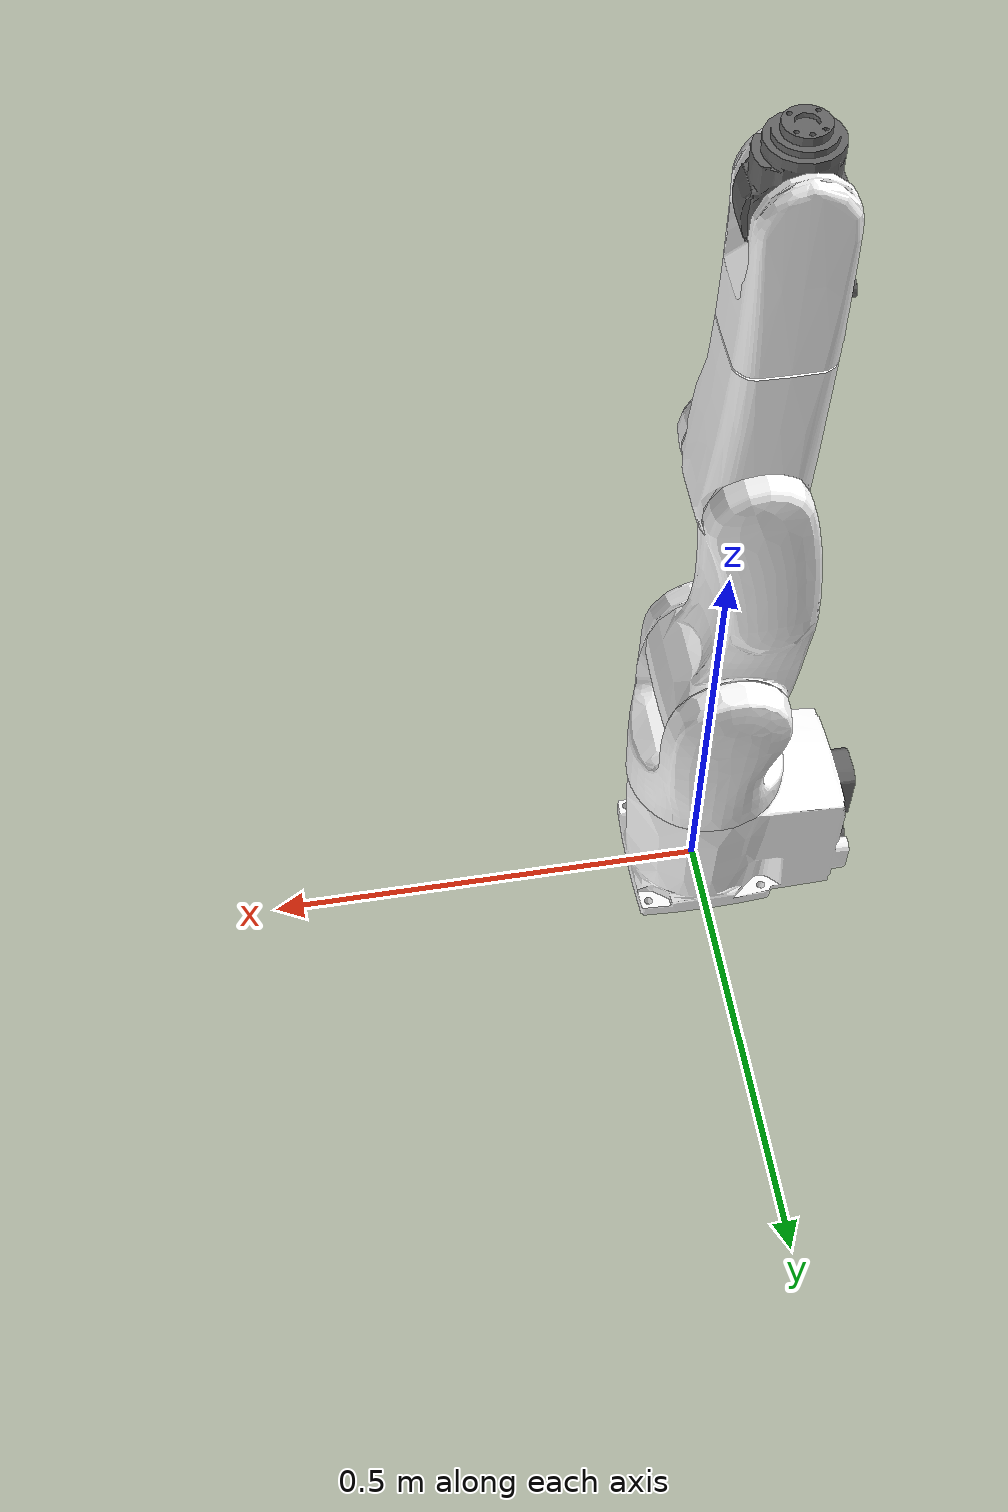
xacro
<?xml version="1.0"?>
<robot xmlns:xacro="http://wiki.ros.org/xacro"
       name="vs060" >

      <xacro:arg name="limited" default="false"/>

  <!-- THE ROBOT -->
  <link name="world"/>

  <!-- common stuff -->
  <gazebo>
    <plugin filename="libgazebo_ros_control.so" name="gazebo_ros_control">
        <robotNamespace>/vs060</robotNamespace>
    </plugin>
  </gazebo>

    <xacro:include filename="$(find denso_robot_descriptions)/vs060_description/vs060_arm.urdf.xacro" />
    <joint name="joint_w" type="fixed">
        <parent link = "world" />
        <child link = "base_link" />
        <origin xyz="0.00 0.00 0.00" rpy="0.0 0.0 0.0" />
    </joint>
    <xacro:vs060 prefix=""/>

</robot>

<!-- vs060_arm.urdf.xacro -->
<robot xmlns:xacro="http://wiki.ros.org/xacro">
    <!--
    Author: Jin Hirai
    -->

    <!-- INERTIAL DEFINITION -->
    <xacro:macro name="upper_triangle_inertial" params="mass *origin">
        <inertial>
            <mass value="${mass}"/>
            <xacro:insert_block name="origin" />
            <inertia ixx="1" ixy="0" ixz="0"
                             iyy="1" iyz="0"
                                     izz="1" />
        </inertial>
    </xacro:macro>

    <!-- RECURSIVE LINK -->
    <xacro:macro name="J" params="prefix num">
        <link name="${prefix}J${num}">
            <visual>
                <origin xyz="0 0 0" rpy="0 0 0"/>
                <geometry>
                    <mesh filename="package://denso_robot_descriptions/vs060_description/J${num}.dae" scale="1 1 1" />
                </geometry>
            </visual>
            <collision>
                <origin xyz="0 0 0" rpy="0 0 0"/>
                <geometry>
                    <mesh filename="package://denso_robot_descriptions/vs060_description/J${num}.dae" scale="1 1 1" />
                </geometry>
            </collision>
        <xacro:upper_triangle_inertial mass="1.0">
            <origin xyz="0.0 0.0 0.0" rpy="0 0 0" />
        </xacro:upper_triangle_inertial>
        </link>
    </xacro:macro>

    <!-- INITIAL JOINT -->
        <xacro:macro name="init_joint" params="prefix num origin_xyz axis_xyz lim_effort lim_lower lim_upper lim_velocity">
        <joint name="joint_${prefix}${num}" type="revolute">
            <parent link="${prefix}base_link" />
            <child link="${prefix}J${num}" />
            <origin rpy="0.000000 0.000000 0.000000" xyz="${origin_xyz}" />
            <axis xyz="${axis_xyz}"/>
            <limit effort="${lim_effort}" lower="${lim_lower}" upper="${lim_upper}" velocity="${lim_velocity}"/>
            <dynamics damping="0" friction="0"/>
        </joint>
    </xacro:macro>

    <!-- RECURSIVE JOINT -->
    <xacro:macro name="repeat_joint" params="prefix num origin_xyz axis_xyz lim_effort lim_lower lim_upper lim_velocity">
        <joint name="joint_${prefix}${num}" type="revolute">
            <parent link="${prefix}J${num-1}" />
            <child link="${prefix}J${num}" />
            <origin rpy="0.000000 0.000000 0.000000" xyz="${origin_xyz}" />
            <axis xyz="${axis_xyz}"/>
            <limit effort="${lim_effort}" lower="${lim_lower}" upper="${lim_upper}" velocity="${lim_velocity}"/>
            <dynamics damping="0" friction="0"/>
        </joint>
    </xacro:macro>

    <!-- Gazebo -->

    <!-- TRANSIMISSION DEFINITION -->
    <xacro:macro name="trans" params="prefix num">
        <transmission name="trans_${num}">
            <type>transmission_interface/SimpleTransmission</type>
            <joint name="joint_${prefix}${num}">
                <hardwareInterface>hardware_interface/PositionJointInterface</hardwareInterface>
            </joint>
            <actuator name="motor_${num}">
                <hardwareInterface>hardware_interface/PositionJointInterface</hardwareInterface>
                <mechanicalReduction>1</mechanicalReduction>
            </actuator>
        </transmission>
    </xacro:macro>

    <!-- Inertia Params -->
    <xacro:property name="base_mass" value="1.0"/>
    <xacro:property name="joint_origin" value="0.000000 0.000000 0.000000"/>
    <xacro:property name="joint_1_xyz" value="0.000000 0.000000 0.181500"/>
    <xacro:property name="joint_2_xyz" value="0.000000 0.000000 0.163500"/>
    <xacro:property name="joint_3_xyz" value="0.000000 0.000000 0.305000"/>
    <xacro:property name="joint_4_xyz" value="-0.010000 0.000000 0.164500"/>
    <xacro:property name="joint_5_xyz" value="0.000000 0.000000 0.135500" />
    <xacro:property name="joint_6_xyz" value="0.000000 0.000000 0.070000" />

    <xacro:property name="axis1" value="-0.000000 -0.000000 1.000000" />
    <xacro:property name="axis2" value="-0.000000 1.000000 -0.000000" />
    <xacro:property name="axis3" value="-0.000000 1.000000 -0.000000" />
    <xacro:property name="axis4" value="-0.000000 -0.000000 1.000000" />
    <xacro:property name="axis5" value="-0.000000 1.000000 -0.000000" />
    <xacro:property name="axis6" value="-0.000000 -0.000000 1.000000" />

    <xacro:property name="eff1" value="1" /><xacro:property name="eff2" value="1" />
    <xacro:property name="eff3" value="1" /><xacro:property name="eff4" value="1" />
    <xacro:property name="eff5" value="1" /><xacro:property name="eff6" value="1" />

    <xacro:property name="low1" value="-2.96706" /><xacro:property name="low2" value="-2.094395" />
    <xacro:property name="low3" value="-2.181662" /><xacro:property name="low4" value="-4.712389" />
    <xacro:property name="low5" value="-2.094395" /><xacro:property name="low6" value="-6.283185" />

    <xacro:property name="up1" value="2.96706"/><xacro:property name="up2" value="2.094395"/>
    <xacro:property name="up3" value="2.70526"/><xacro:property name="up4" value="4.712389"/>
    <xacro:property name="up5" value="2.094395"/><xacro:property name="up6" value="6.283185"/>

    <xacro:property name="vel1" value="3.92699081698724"/><xacro:property name="vel2" value="2.61799387799149"/>
    <xacro:property name="vel3" value="2.85832571599111"/><xacro:property name="vel4" value="3.92699081698724"/>
    <xacro:property name="vel5" value="3.02168853397778"/><xacro:property name="vel6" value="6.28318530717959"/>

    <xacro:macro name="vs060" params="prefix">
        <link name="${prefix}base_link">
            <visual>
                <origin rpy="0 0 0" xyz="0 0 0" />
                <geometry>
				    <mesh filename="package://denso_robot_descriptions/vs060_description/base_link.dae" scale="1 1 1" />
			    </geometry>
            </visual>
            <collision>
                <origin rpy="0 0 0" xyz="0 0 0" />
                <geometry>
                    <mesh filename="package://denso_robot_descriptions/vs060_description/base_link.dae" scale="1 1 1" />
                </geometry>
            </collision>
            <xacro:upper_triangle_inertial mass="${base_mass}">
                <origin rpy="0.000000 0.000000 0.000000" xyz="1.000000 0.000000 0.000000" />
            </xacro:upper_triangle_inertial>
        </link>

        <xacro:J prefix="${prefix}" num="1"/>
        <xacro:init_joint prefix="${prefix}" num="1" origin_xyz="${joint_1_xyz}" axis_xyz="${axis1}"
                         lim_effort="${eff1}" lim_lower="${low1}" lim_upper="${up1}" lim_velocity="${vel1}"/>
        <xacro:trans prefix="${prefix}" num="1"/>

        <!-- Definition of link -->
        <xacro:J prefix="${prefix}" num="2"/>
        <xacro:repeat_joint prefix="${prefix}" num="2" origin_xyz="${joint_2_xyz}" axis_xyz="${axis2}"
                         lim_effort="${eff2}" lim_lower="${low2}" lim_upper="${up2}" lim_velocity="${vel2}"/>
        <xacro:trans prefix="${prefix}" num="2"/>

        <xacro:J prefix="${prefix}" num="3"/>
        <xacro:repeat_joint prefix="${prefix}" num="3" origin_xyz="${joint_3_xyz}" axis_xyz="${axis3}"
                         lim_effort="${eff3}" lim_lower="${low3}" lim_upper="${up3}" lim_velocity="${vel3}"/>
        <xacro:trans prefix="${prefix}" num="3"/>

        <xacro:J prefix="${prefix}" num="4"/>
        <xacro:repeat_joint prefix="${prefix}" num="4" origin_xyz="${joint_4_xyz}" axis_xyz="${axis4}"
                         lim_effort="${eff4}" lim_lower="${low4}" lim_upper="${up4}" lim_velocity="${vel4}"/>
        <xacro:trans prefix="${prefix}" num="4"/>

        <xacro:J prefix="${prefix}" num="5"/>
        <xacro:repeat_joint prefix="${prefix}" num="5" origin_xyz="${joint_5_xyz}" axis_xyz="${axis5}"
                         lim_effort="${eff5}" lim_lower="${low5}" lim_upper="${up5}" lim_velocity="${vel5}"/>
        <xacro:trans prefix="${prefix}" num="5"/>

        <xacro:J prefix="${prefix}" num="6"/>
        <xacro:repeat_joint prefix="${prefix}" num="6" origin_xyz="${joint_6_xyz}" axis_xyz="${axis6}"
                         lim_effort="${eff6}" lim_lower="${low6}" lim_upper="${up6}" lim_velocity="${vel6}"/>
        <xacro:trans prefix="${prefix}" num="6"/>
    </xacro:macro>
</robot>
